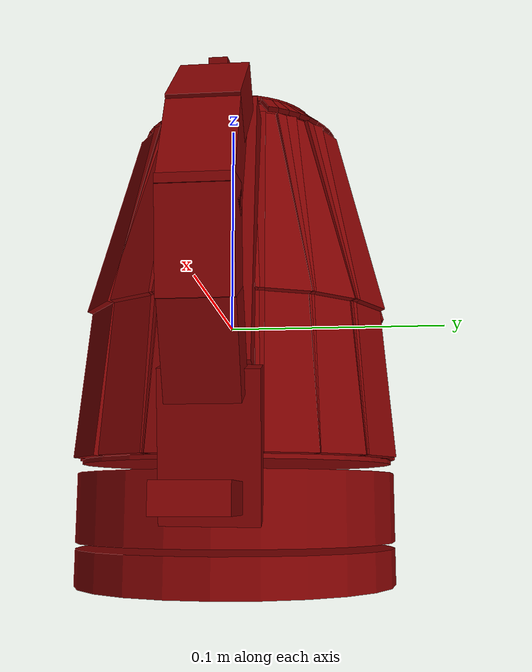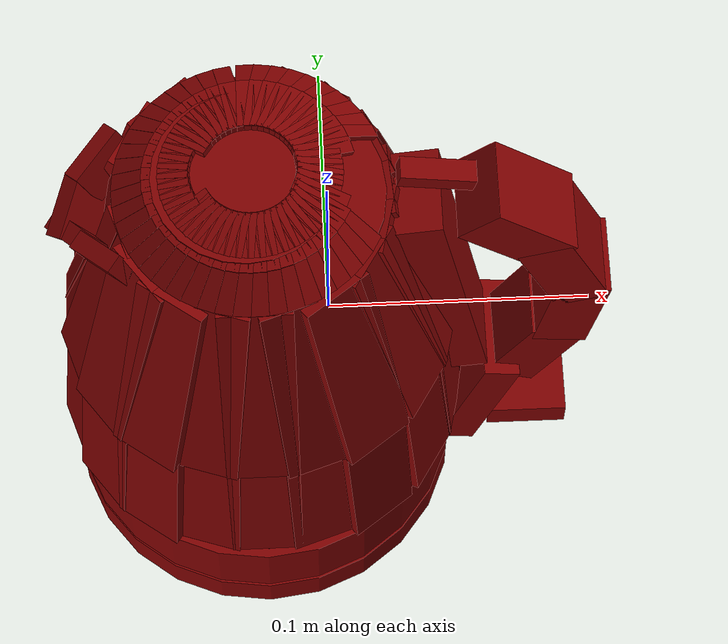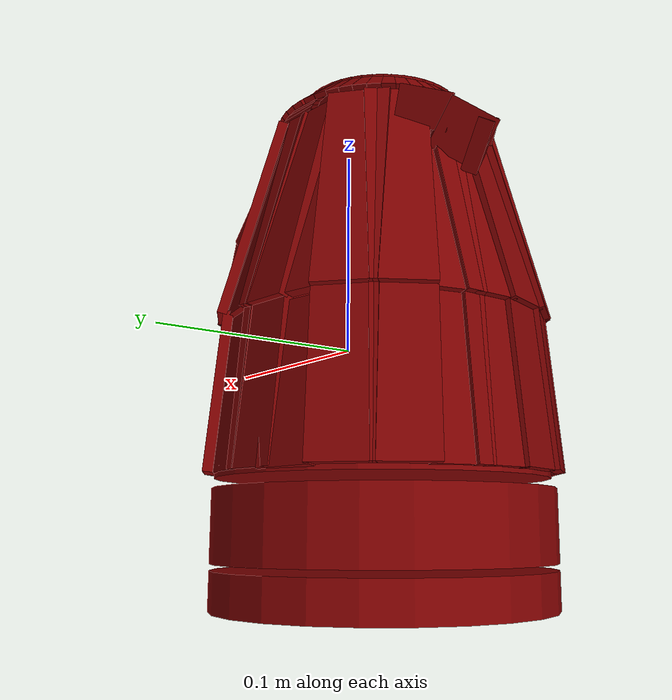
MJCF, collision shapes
<?xml version='1.0' encoding='UTF-8'?>
<mujoco model="model">
  <option timestep="0.002" gravity="0.0 0.0 -9.81"/>
  <compiler angle="radian"/>
  <asset>
    <mesh file="visuals/Body001.obj" name="Body001_vis"/>
    <mesh file="visuals/Button001.obj" name="Button001_vis"/>
    <mesh file="visuals/Button002.obj" name="Button002_vis"/>
    <mesh file="visuals/Handle001.obj" name="Handle001_vis"/>
    <mesh file="visuals/Handle001_Clear.obj" name="Handle001_Clear_vis"/>
    <mesh file="visuals/Lid001.obj" name="Lid001_vis"/>
    <texture file="visuals/T_BC001.png" name="Body001_material" type="2d"/>
    <material name="Body001_material" rgba="1 1 1 1.0" texture="Body001_material" shininess="0.25" specular="2"/>
    <texture file="visuals/T_BC001.png" name="Handle001_material" type="2d"/>
    <material name="Handle001_material" rgba="1 1 1 1.0" texture="Handle001_material" shininess="0.1" specular="0.7"/>
    <texture file="visuals/T_BC001.png" name="Button001_material" type="2d"/>
    <material name="Button001_material" rgba="1 1 1 1.0" texture="Button001_material" shininess="0.1" specular="0.7"/>
    <texture file="visuals/T_BC001.png" name="Button002_material" type="2d"/>
    <material name="Button002_material" rgba="1 1 1 1.0" texture="Button002_material" shininess="0.1" specular="0.7"/>
    <texture file="visuals/T_BC001.png" name="Handle001_Clear_material" type="2d"/>
    <material name="Handle001_Clear_material" rgba="1 1 1 0.25477707386016846" texture="Handle001_Clear_material" shininess="0.1" specular="1.5"/>
    <texture file="visuals/T_BC001.png" name="Lid001_material" type="2d"/>
    <material name="Lid001_material" rgba="1 1 1 1.0" texture="Lid001_material" shininess="0.1" specular="1.5"/>
  </asset>
  <default>
    <default class="visual">
      <geom conaffinity="0" contype="0" group="1" type="mesh"/>
    </default>
    <default class="collision">
      <geom group="0" rgba="0.5 0 0 0.5"/>
    </default>
    <default class="spawn">
      <geom group="0" rgba="1 1 1 0.5" contype="0" conaffinity="0"/>
      <site group="0" rgba="1 1 1 0.5"/>
    </default>
    <default class="region">
      <geom group="1" conaffinity="0" contype="0" rgba="0 1 0 0"/>
    </default>
  </default>
  <worldbody>
    <body>
      <body name="object">
        <geom mesh="Body001_vis" type="mesh" solimp="0.998 0.998 0.001" solref="0.001 1" friction="0.95 0.3 0.1" class="visual" material="Body001_material"/>
        <geom class="collision" type="cylinder" pos="-0.02722155675292015 -0.0010092105949297547 -0.11129803955554962" size="0.0768081322312355 0.008617708459496498" quat="1.0 0.0 0.0 0.0" density="1000.0"/>
        <body name="Handle001">
          <joint axis="0.0 0.0 1.0" pos="3.725290298461914e-09 0.0 0.007803112268447876" limited="true" name="Handle001_joint" range="0.0 0.08" type="slide" damping="1" frictionloss="1" armature=".01" stiffness="0.05"/>
          <geom mesh="Handle001_vis" type="mesh" solimp="0.998 0.998 0.001" solref="0.001 1" friction="0.95 0.3 0.1" class="visual" material="Handle001_material"/>
          <geom class="collision" type="box" pos="0.04201378673315048 1.4690985494780762e-07 0.0354456752538681" size="0.008989891037344933 0.01609395258128643 0.06281956285238266" quat="0.9965038299560547 -3.209718195312374e-17 -0.08354714512825012 2.859695147350294e-09" density="1000.0"/>
          <geom class="collision" type="box" pos="0.05809831619262695 1.436938390497744e-07 -0.058511536568403244" size="0.007249075919389725 0.020444408059120178 0.03145648539066315" quat="0.9909151196479797 -0.008864816278219223 0.13260747492313385 0.020589224994182587" density="1000.0"/>
          <geom class="collision" type="box" pos="0.07869435101747513 1.4495607558728807e-07 -0.021634802222251892" size="0.01047359500080347 0.015055187046527863 0.020427098497748375" quat="0.9771967530250549 7.972967607783039e-16 0.21233582496643066 -7.267942248034842e-09" density="1000.0"/>
          <geom class="collision" type="box" pos="0.09147712588310242 1.4626337474510365e-07 0.016558753326535225" size="0.010473599657416344 0.015055186115205288 0.023168545216321945" quat="0.9974961280822754 -5.825168398045175e-16 0.07072144001722336 -2.420690314863805e-09" density="1000.0"/>
          <geom class="collision" type="box" pos="0.08654046058654785 1.4747382692803512e-07 0.0519225150346756" size="0.010473595932126045 0.015055186115205288 0.023168545216321945" quat="0.9830483794212341 -5.436660854919229e-16 -0.18334630131721497 6.2756755347948e-09" density="1000.0"/>
          <geom class="collision" type="box" pos="0.06790594756603241 1.485413605450958e-07 0.08311080932617188" size="0.01047359686344862 0.015055186115205288 0.020393677055835724" quat="0.9199845790863037 -2.7333045935385315e-15 -0.3919545114040375 1.341603095283972e-08" density="1000.0"/>
          <geom class="collision" type="cylinder" pos="-0.02722155675292015 -0.0010092105949297547 -0.08373555541038513" size="0.07685434073209763 0.016160646453499794" quat="1.0 0.0 0.0 0.0" density="1000.0"/>
          <body name="Button001">
            <joint axis="0.0 0.0 -1.0" pos="0.0756685882806778 -0.0012993308482691646 -0.08046502619981766" limited="true" name="Button001_joint" range="0.0 0.005" type="slide" damping="1" frictionloss="1" armature=".01" stiffness="2" springref="-0.12"/>
            <geom mesh="Button001_vis" type="mesh" solimp="0.998 0.998 0.001" solref="0.001 1" friction="0.95 0.3 0.1" class="visual" material="Button001_material"/>
            <geom class="collision" type="box" pos="0.0794016495347023 -0.0016174050979316235 -0.07966085523366928" size="0.015766000375151634 0.015154006890952587 0.006412597373127937" quat="1.0 0.0 0.0 0.0" density="1000.0"/>
          </body>
          <body name="Button002">
            <joint axis="0.0 1.0 0.0" pos="0.03885579854249954 -0.00021310761803761125 0.11073160171508789" limited="true" name="Button002_joint" range="0.0 0.2617993877991494" type="hinge" damping="1" frictionloss="1" armature=".01" stiffness="0.05"/>
            <geom mesh="Button002_vis" type="mesh" solimp="0.998 0.998 0.001" solref="0.001 1" friction="0.95 0.3 0.1" class="visual" material="Button002_material"/>
            <geom class="collision" type="box" pos="0.0385051965713501 1.4951478988223244e-07 0.11154983937740326" size="0.0033648379612714052 0.0042495932430028915 0.013864615000784397" quat="0.7748663425445557 2.846093044399367e-14 -0.6321250796318054 2.1636745728415008e-08" density="1000.0"/>
          </body>
          <body name="Handle001_Clear">
            <geom mesh="Handle001_Clear_vis" type="mesh" solimp="0.998 0.998 0.001" solref="0.001 1" friction="0.95 0.3 0.1" class="visual" material="Handle001_Clear_material"/>
            <geom class="collision" type="box" pos="-0.08053702116012573 0.019328923895955086 0.09065964818000793" size="0.0036202354822307825 0.011546943336725235 0.00821163970977068" quat="0.9015769362449646 0.02373584546148777 -0.2408757507801056 -0.35857293009757996" density="1000.0"/>
            <geom class="collision" type="box" pos="-0.08790590614080429 0.004140382166951895 0.08134017884731293" size="0.0036202368792146444 0.011546945199370384 0.011602171696722507" quat="0.9193747639656067 0.12453010678291321 -0.3004531264305115 -0.22129221260547638" density="1000.0"/>
            <geom class="collision" type="box" pos="-0.08676664531230927 -0.006949464324861765 0.07933914661407471" size="0.003620235715061426 0.011546943336725235 0.01160216610878706" quat="0.8744507431983948 -0.15662609040737152 -0.2659342288970947 0.3742767870426178" density="1000.0"/>
            <geom class="collision" type="box" pos="-0.08016178011894226 -0.018924469128251076 0.09193047881126404" size="0.00362023594789207 0.011546943336725235 0.0060956706292927265" quat="0.8819336295127869 -0.1455392837524414 -0.22300022840499878 0.3889501988887787" density="1000.0"/>
            <geom class="collision" type="cylinder" pos="-0.02668241411447525 -0.00046684127300977707 -0.06114138290286064" size="0.07518697530031204 0.0022807568311691284" quat="1.0 0.0 0.0 0.0" density="1000.0"/>
            <geom class="collision" type="box" pos="-0.09858841449022293 1.3731190051657904e-07 -0.026205215603113174" size="0.0022226141300052404 0.013775870203971863 0.03540914133191109" quat="0.998891294002533 -1.611361183373461e-10 0.04707598313689232 -3.2820599571437015e-09" density="1000.0"/>
            <geom class="collision" type="box" pos="-0.09644709527492523 -0.022902319207787514 -0.026058677583932877" size="0.002222614362835884 0.013775870203971863 0.03540913015604019" quat="0.986053466796875 -0.007523172069340944 0.046470798552036285 0.15963231027126312" density="1000.0"/>
            <geom class="collision" type="box" pos="-0.08724537491798401 -0.04426399618387222 -0.025899987667798996" size="0.0022226134315133095 0.013775866478681564 0.03540912643074989" quat="0.9484701156616211 -0.014767616987228394 0.04469960927963257 0.3133500814437866" density="1000.0"/>
            <geom class="collision" type="box" pos="-0.07098263502120972 -0.06028774753212929 -0.025905480608344078" size="0.0022226145956665277 0.013775873929262161 0.03540914133191109" quat="0.8890649676322937 -0.021459979936480522 0.04190000519156456 0.4553540349006653" density="1000.0"/>
            <geom class="collision" type="box" pos="-0.049595389515161514 -0.0673801600933075 -0.02623271942138672" size="0.0022226141300052404 0.013775864616036415 0.03540913760662079" quat="0.8086549639701843 -0.027635756880044937 0.03811036795377731 0.5863966345787048" density="1000.0"/>
            <geom class="collision" type="box" pos="-0.027211928740143776 -0.07069927453994751 -0.026257049292325974" size="0.002222614362835884 0.013775874860584736 0.035409148782491684" quat="0.7045503854751587 -0.033370960503816605 0.03320411592721939 0.7080908417701721" density="1000.0"/>
            <geom class="collision" type="box" pos="-0.005019556265324354 -0.06754183769226074 -0.026215489953756332" size="0.002222613897174597 0.013775868341326714 0.03540914133191109" quat="0.5838850140571594 -0.038195885717868805 0.02751736342906952 0.8104703426361084" density="1000.0"/>
            <geom class="collision" type="box" pos="0.016206197440624237 -0.059947844594717026 -0.025935323908925056" size="0.0022226134315133095 0.013775868341326714 0.035409115254879" quat="0.4524306654930115 -0.04197021573781967 0.02132219262421131 0.8905562162399292" density="1000.0"/>
            <geom class="collision" type="box" pos="0.035580094903707504 -0.0389801450073719 -0.025942064821720123" size="0.0022226134315133095 0.01377587765455246 0.03540914133191109" quat="0.2727084159851074 -0.04528747871518135 0.012852195650339127 0.9609442949295044" density="1000.0"/>
            <geom class="collision" type="box" pos="0.04464205726981163 -0.017063023522496223 -0.025945289060473442" size="0.0022226141300052404 0.013775866478681564 0.03540914133191109" quat="0.11563549190759659 -0.046759232878685 0.005449659191071987 0.9921755194664001" density="1000.0"/>
            <geom class="collision" type="box" pos="0.04635562002658844 0.0063081360422074795 -0.02594597637653351" size="0.002222613664343953 0.013775867410004139 0.035409115254879" quat="0.042503487318754196 0.047033220529556274 0.002003107685595751 -0.9979866147041321" density="1000.0"/>
            <geom class="collision" type="box" pos="0.04094963148236275 0.028455261141061783 -0.025944234803318977" size="0.0022226134315133095 0.013775864616036415 0.03540913760662079" quat="0.19533079862594604 0.046167001128196716 0.009205561131238937 -0.9796069264411926" density="1000.0"/>
            <geom class="collision" type="box" pos="0.027694376185536385 0.04950957000255585 -0.025939783081412315" size="0.002222613897174597 0.013775869272649288 0.03540912643074989" quat="0.35681435465812683 0.04396996647119522 0.016815969720482826 -0.9329884052276611" density="1000.0"/>
            <geom class="collision" type="box" pos="0.009256304241716862 0.06442540138959885 -0.025933532044291496" size="0.002222614362835884 0.013775872066617012 0.03540914133191109" quat="0.5013288259506226 0.040717508643865585 0.02362668141722679 -0.8639752864837646" density="1000.0"/>
            <geom class="collision" type="box" pos="-0.013633760623633862 0.06800924241542816 -0.026379419490695" size="0.0022226145956665277 0.013775871135294437 0.03540913760662079" quat="0.631479799747467 0.036475371569395065 0.029760418459773064 -0.7739619612693787" density="1000.0"/>
            <geom class="collision" type="box" pos="-0.03498903661966324 0.06947451084852219 -0.02633088454604149" size="0.0022226148284971714 0.013775872997939587 0.03540912643074989" quat="0.7428945899009705 0.03146980702877045 0.035011183470487595 -0.6677510738372803" density="1000.0"/>
            <geom class="collision" type="box" pos="-0.053485650569200516 0.06529625505208969 -0.028121767565608025" size="0.002135859103873372 0.013775868341326714 0.03422689810395241" quat="0.7865890860557556 0.031835369765758514 0.05434313416481018 -0.6142564415931702" density="1000.0"/>
            <geom class="collision" type="box" pos="-0.07534916698932648 0.056860197335481644 -0.025904512032866478" size="0.0022226127330213785 0.013775870203971863 0.03540912643074989" quat="0.9054586887359619 0.019879378378391266 0.042672593146562576 -0.4218156337738037" density="1000.0"/>
            <geom class="collision" type="box" pos="-0.09071271866559982 0.03912953659892082 -0.02589917555451393" size="0.002222615061327815 0.013775872997939587 0.03540915250778198" quat="0.9607110619544983 0.012890903279185295 0.04527648910880089 -0.2735289931297302" density="1000.0"/>
            <geom class="collision" type="box" pos="-0.0957435891032219 0.017136327922344208 -0.026273954659700394" size="0.002222614362835884 0.013775872066617012 0.03540913015604019" quat="0.9913296103477478 0.005781510844826698 0.04671946540474892 -0.12267636507749557" density="1000.0"/>
            <geom class="collision" type="box" pos="-0.08553577214479446 1.3731940384786867e-07 0.0536063089966774" size="0.002222613664343953 0.013775870203971863 0.047751136124134064" quat="0.9910548329353333 1.23869151047451e-10 0.13345548510551453 -3.2836775520905803e-09" density="1000.0"/>
            <geom class="collision" type="box" pos="-0.08401688188314438 -0.018769344314932823 0.05398216098546982" size="0.0022226141300052404 0.013775872066617012 0.047751136124134064" quat="0.9783176779747009 -0.021327437832951546 0.13174015283584595 0.1583799421787262" density="1000.0"/>
            <geom class="collision" type="box" pos="-0.07668396085500717 -0.03643055260181427 0.05437836796045303" size="0.002222613897174597 0.013775867410004139 0.04775111749768257" quat="0.9410291910171509 -0.04186467453837395 0.1267189234495163 0.3108917474746704" density="1000.0"/>
            <geom class="collision" type="box" pos="-0.06330104917287827 -0.049621108919382095 0.054305437952280045" size="0.0022226148284971714 0.013775874860584736 0.047751136124134064" quat="0.8820900917053223 -0.06083688512444496 0.11878222972154617 0.4517817199230194" density="1000.0"/>
            <geom class="collision" type="box" pos="-0.045545294880867004 -0.05499214679002762 0.05332440137863159" size="0.002222614362835884 0.013775864616036415 0.04775113984942436" quat="0.8023109436035156 -0.07834463566541672 0.10803911834955215 0.5817962288856506" density="1000.0"/>
            <geom class="collision" type="box" pos="-0.027277203276753426 -0.05767712742090225 0.05319565162062645" size="0.0022226148284971714 0.013775871135294437 0.04775114730000496" quat="0.6990230083465576 -0.09460338950157166 0.09413038194179535 0.7025357484817505" density="1000.0"/>
            <geom class="collision" type="box" pos="-0.009146585129201412 -0.055178772658109665 0.05326163023710251" size="0.0022226141300052404 0.013775868341326714 0.04775112867355347" quat="0.5793043375015259 -0.10828161984682083 0.07800904661417007 0.8041120171546936" density="1000.0"/>
            <geom class="collision" type="box" pos="0.008466321043670177 -0.04934779927134514 0.054013337939977646" size="0.0022226134315133095 0.013775869272649288 0.04775112867355347" quat="0.44888126850128174 -0.11898138374090195 0.060446299612522125 0.883569598197937" density="1000.0"/>
            <geom class="collision" type="box" pos="0.024414245039224625 -0.03208746388554573 0.05397242307662964" size="0.002222613664343953 0.01377587579190731 0.047751136124134064" quat="0.27056893706321716 -0.1283854991197586 0.03643476217985153 0.9534055590629578" density="1000.0"/>
            <geom class="collision" type="box" pos="0.03187251836061478 -0.01404552347958088 0.053967200219631195" size="0.002222614362835884 0.01377586554735899 0.047751136124134064" quat="0.11472830921411514 -0.13255798816680908 0.015449282713234425 0.9843917489051819" density="1000.0"/>
            <geom class="collision" type="box" pos="0.03328080102801323 0.00519242137670517 0.05398837849497795" size="0.002222613897174597 0.01377586554735899 0.047751110047101974" quat="0.04217004030942917 0.13333450257778168 0.0056786127388477325 -0.9901572465896606" density="1000.0"/>
            <geom class="collision" type="box" pos="0.028828492388129234 0.023421281948685646 0.05403202027082443" size="0.002222613664343953 0.013775870203971863 0.04775115102529526" quat="0.19379839301109314 0.13087886571884155 0.02609686367213726 -0.9719217419624329" density="1000.0"/>
            <geom class="collision" type="box" pos="0.01791571080684662 0.040748629719018936 0.05410079285502434" size="0.002222613897174597 0.013775869272649288 0.04775112867355347" quat="0.3540150821208954 0.1246504932641983 0.04767162352800369 -0.9256689548492432" density="1000.0"/>
            <geom class="collision" type="box" pos="0.0027387640438973904 0.05302223935723305 0.05417989566922188" size="0.0022226134315133095 0.013775872066617012 0.04775113984942436" quat="0.4973958134651184 0.11543010175228119 0.06697928160429001 -0.8571972250938416" density="1000.0"/>
            <geom class="collision" type="box" pos="-0.016240686178207397 0.055284060537815094 0.05298786610364914" size="0.0022226141300052404 0.013775868341326714 0.04775113984942436" quat="0.6265257596969604 0.10340403020381927 0.08436787873506546 -0.7678900957107544" density="1000.0"/>
            <geom class="collision" type="box" pos="-0.03360709920525551 0.05653991177678108 0.053180158138275146" size="0.002222614362835884 0.013775870203971863 0.04775111749768257" quat="0.7370664477348328 0.08921383321285248 0.09925327450037003 -0.6625124216079712" density="1000.0"/>
            <geom class="collision" type="box" pos="-0.048625364899635315 0.05133552476763725 0.05078981816768646" size="0.0021358588710427284 0.013775864616036415 0.044902559369802475" quat="0.7789214253425598 0.08494257926940918 0.12229876965284348 -0.6091873049736023" density="1000.0"/>
            <geom class="collision" type="box" pos="-0.06688713282346725 0.04679064825177193 0.05445494502782822" size="0.0022226120345294476 0.013775870203971863 0.047751110047101974" quat="0.8983551859855652 0.0563560426235199 0.12097248435020447 -0.4185064136981964" density="1000.0"/>
            <geom class="collision" type="box" pos="-0.07953023910522461 0.03220018744468689 0.05448601767420769" size="0.0022226148284971714 0.013775872066617012 0.047751158475875854" quat="0.9531741142272949 0.036544427275657654 0.12835434079170227 -0.2713831067085266" density="1000.0"/>
            <geom class="collision" type="box" pos="-0.08310592174530029 0.013959878124296665 0.05342869833111763" size="0.0022226145956665277 0.013775870203971863 0.047751136124134064" quat="0.9835524559020996 0.01638999581336975 0.1324450522661209 -0.12171395868062973" density="1000.0"/>
          </body>
          <body name="Lid001">
            <joint axis="0.0 1.0 0.0" pos="0.016730427742004395 -2.2817766875959933e-05 0.11013001203536987" limited="true" name="Lid001_joint" range="0.0 1.5707963267948966" type="hinge" damping="1" frictionloss="1" armature=".01" stiffness="0.05"/>
            <geom mesh="Lid001_vis" type="mesh" solimp="0.998 0.998 0.001" solref="0.001 1" friction="0.95 0.3 0.1" class="visual" material="Lid001_material"/>
            <geom class="collision" type="cylinder" pos="-0.023895051330327988 -0.0004728317726403475 0.0931534543633461" size="0.045052483677864075 0.008690756745636463" quat="1.0 0.0 0.0 0.0" density="1000.0"/>
            <geom class="collision" type="cylinder" pos="-0.028747227042913437 -0.000715753878466785 0.10820936411619186" size="0.0336897186934948 0.008061508648097515" quat="1.0 0.0 0.0 0.0" density="1000.0"/>
            <geom class="collision" type="box" pos="-0.0278943944722414 0.02733789011836052 0.11639609187841415" size="0.0032247118651866913 0.010684615932404995 0.001189921866171062" quat="0.9931198954582214 -0.11710187047719955 -2.6001840220453188e-17 -2.5020025229578004e-24" density="1000.0"/>
            <geom class="collision" type="box" pos="-0.027894385159015656 0.04248424246907234 0.10886827111244202" size="0.0032247118651866913 0.008712706156075 0.0011899240780621767" quat="0.9424005150794983 -0.33448654413223267 -7.427094577947045e-17 -1.3985008958153145e-24" density="1000.0"/>
            <geom class="collision" type="box" pos="-0.02438637800514698 0.02721528150141239 0.11639609187841415" size="0.0032247118651866913 0.010684615932404995 0.001189921866171062" quat="0.9910213351249695 -0.11685439944267273 0.00760869774967432 -0.06452800333499908" density="1000.0"/>
            <geom class="collision" type="box" pos="-0.02242225781083107 0.042233746498823166 0.10886827111244202" size="0.0032247118651866913 0.008712706156075 0.0011899240780621767" quat="0.9404091238975525 -0.33377978205680847 0.02173328399658203 -0.06123252585530281" density="1000.0"/>
            <geom class="collision" type="box" pos="-0.020923880860209465 0.026638798415660858 0.11639609187841415" size="0.0032247118651866913 0.010684615932404995 0.001189921866171062" quat="0.9847344756126404 -0.1161131039261818 0.015185235999524593 -0.12878328561782837" density="1000.0"/>
            <geom class="collision" type="box" pos="-0.017028817906975746 0.041275762021541595 0.10886827856302261" size="0.0032247118651866913 0.008712706156075 0.0011899240780621767" quat="0.9344433546066284 -0.33166229724884033 0.04337470978498459 -0.12220625579357147" density="1000.0"/>
            <geom class="collision" type="box" pos="-0.017565377056598663 0.025618188083171844 0.11639609187841415" size="0.0032247118651866913 0.010684615932404995 0.001189921866171062" quat="0.9742859601974487 -0.11488106101751328 0.022697603330016136 -0.19249434769153595" density="1000.0"/>
            <geom class="collision" type="box" pos="-0.011805142275989056 0.03962646424770355 0.10886827856302261" size="0.0032247118651866913 0.008712706156075 0.0011899240780621767" quat="0.9245284199714661 -0.3281431198120117 0.06483280658721924 -0.18266351521015167" density="1000.0"/>
            <geom class="collision" type="box" pos="-0.014367574825882912 0.02417067624628544 0.11639609187841415" size="0.003224712098017335 0.010684615932404995 0.001189921866171062" quat="0.9597198367118835 -0.1131635308265686 0.03011403977870941 -0.25539183616638184" density="1000.0"/>
            <geom class="collision" type="box" pos="-0.006839449517428875 0.03731372207403183 0.10886827856302261" size="0.0032247118651866913 0.008712706156075 0.0011899240780621767" quat="0.9107062220573425 -0.32323721051216125 0.086016945540905 -0.2423488348722458" density="1000.0"/>
            <geom class="collision" type="box" pos="-0.01138448528945446 0.022320711985230446 0.11639609187841415" size="0.0032247118651866913 0.010684615932404995 0.001189921866171062" quat="0.9410977363586426 -0.11096774786710739 0.03740321844816208 -0.31721004843711853" density="1000.0"/>
            <geom class="collision" type="box" pos="-0.0022155949845910072 0.034376565366983414 0.10886827856302261" size="0.0032247118651866913 0.008712706156075 0.0011899240780621767" quat="0.8930352330207825 -0.3169651925563812 0.10683749616146088 -0.30100980401039124" density="1000.0"/>
            <geom class="collision" type="box" pos="-0.008666474372148514 0.02009953185915947 0.11639609187841415" size="0.0032247118651866913 0.010684615932404995 0.001189921866171062" quat="0.9184983968734741 -0.10830295085906982 0.044534292072057724 -0.3776875436306" density="1000.0"/>
            <geom class="collision" type="box" pos="0.001988343195989728 0.030864611268043518 0.10886827856302261" size="0.0032247118651866913 0.008712706156075 0.0011899240780621767" quat="0.8715900182723999 -0.30935364961624146 0.12720656394958496 -0.35839876532554626" density="1000.0"/>
            <geom class="collision" type="box" pos="-0.00625944510102272 0.01754465140402317 0.11639609187841415" size="0.003224712098017335 0.010684615932404995 0.001189921866171062" quat="0.8920172452926636 -0.10518048703670502 0.05147717893123627 -0.4365689158439636" density="1000.0"/>
            <geom class="collision" type="box" pos="0.005701375659555197 0.026837166398763657 0.10886827856302261" size="0.0032247118651866913 0.008712706156075 0.0011899240780621767" quat="0.846461296081543 -0.3004347085952759 0.14703801274299622 -0.4142729938030243" density="1000.0"/>
            <geom class="collision" type="box" pos="-0.004204047843813896 0.01469920389354229 0.11639609187841415" size="0.003224712098017335 0.010684615932404995 0.001189921866171062" quat="0.8617662191390991 -0.10161349922418594 0.05820252001285553 -0.49360525608062744" density="1000.0"/>
            <geom class="collision" type="box" pos="0.008860793896019459 0.022362234070897102 0.10886827856302261" size="0.003224712098017335 0.008712706156075 0.0011899240780621767" quat="0.8177551627159119 -0.29024603962898254 0.16624808311462402 -0.46839648485183716" density="1000.0"/>
            <geom class="collision" type="box" pos="-0.0025349892675876617 0.011611251160502434 0.11639609187841415" size="0.0032247118651866913 0.010684615932404995 0.001189921866171062" quat="0.827873170375824 -0.09761706739664078 0.06468186527490616 -0.5485555529594421" density="1000.0"/>
            <geom class="collision" type="box" pos="0.010921488516032696 0.018677134066820145 0.10886827856302261" size="0.002604342997074127 0.008712706156075 0.0011899240780621767" quat="0.7855930924415588 -0.27883073687553406 0.18475553393363953 -0.5205404162406921" density="1000.0"/>
            <geom class="collision" type="box" pos="-0.0012804530560970306 0.008332934230566025 0.11639609187841415" size="0.003224712098017335 0.010684615932404995 0.001189921866171062" quat="0.7904813885688782 -0.09320807456970215 0.07088785618543625 -0.6011874675750732" density="1000.0"/>
            <geom class="collision" type="box" pos="-0.0030304440297186375 0.004556729458272457 0.11701653152704239" size="0.0032247118651866913 0.00831636879593134 0.001189921866171062" quat="0.7497488260269165 -0.08840517699718475 0.07679425925016403 -0.6512786746025085" density="1000.0"/>
            <geom class="collision" type="box" pos="-0.0026172264479100704 0.0014029385056346655 0.11699995398521423" size="0.0032247123308479786 0.008316367864608765 0.001189921866171062" quat="0.7058475613594055 -0.08322866261005402 0.0823761373758316 -0.6986174583435059" density="1000.0"/>
            <geom class="collision" type="box" pos="-0.002707658801227808 -0.0017758863978087902 0.11700522154569626" size="0.0032247116323560476 0.00831636879593134 0.001189921866171062" quat="0.6589633226394653 -0.07770039141178131 0.08760984241962433 -0.7430036664009094" density="1000.0"/>
            <geom class="collision" type="box" pos="-0.003297165036201477 -0.004890840034931898 0.1170322522521019" size="0.003224712098017335 0.00831636879593134 0.0011899216333404183" quat="0.6092942357063293 -0.07184375077486038 0.09247330576181412 -0.7842497825622559" density="1000.0"/>
            <geom class="collision" type="box" pos="-0.0026356843300163746 -0.008545946329832077 0.11663559079170227" size="0.0032247118651866913 0.010256156325340271 0.0011899217497557402" quat="0.5570499897003174 -0.06568346917629242 0.09694594144821167 -0.8221815228462219" density="1000.0"/>
            <geom class="collision" type="box" pos="-0.003120124340057373 -0.012129779905080795 0.11639609932899475" size="0.0032247118651866913 0.010684615932404995 0.001189921866171062" quat="0.5024516582489014 -0.05924560874700546 0.10100886225700378 -0.856638491153717" density="1000.0"/>
            <geom class="collision" type="box" pos="0.010099722072482109 -0.019522186368703842 0.10886827856302261" size="0.0032247118651866913 0.008712706156075 0.0011899240780621767" quat="0.4767910838127136 -0.16922757029533386 0.288519024848938 -0.8128893375396729" density="1000.0"/>
            <geom class="collision" type="box" pos="-0.004939276725053787 -0.015131758525967598 0.11639609187841415" size="0.0032247118651866913 0.010684615932404995 0.001189921866171062" quat="0.4457298219203949 -0.05255737155675888 0.10464490205049515 -0.8874751329421997" density="1000.0"/>
            <geom class="collision" type="box" pos="0.007210334297269583 -0.024176038801670074 0.10886827856302261" size="0.0032247118651866913 0.008712706156075 0.0011899240780621767" quat="0.4229660928249359 -0.1501234620809555 0.2989048957824707 -0.8421511054039001" density="1000.0"/>
            <geom class="collision" type="box" pos="-0.007132355123758316 -0.017872489988803864 0.11639609932899475" size="0.0032247118651866913 0.010684615932404995 0.001189921866171062" quat="0.38712427020072937 -0.04564700648188591 0.1078386977314949 -0.9145610928535461" density="1000.0"/>
            <geom class="collision" type="box" pos="0.003741854103282094 -0.02841591089963913 0.10886827856302261" size="0.0032247118651866913 0.008712706156075 0.0011899240780621767" quat="0.36735355854034424 -0.1303848773241043 0.30802756547927856 -0.8678537607192993" density="1000.0"/>
            <geom class="collision" type="box" pos="-0.009662322700023651 -0.0203056950122118 0.11639609187841415" size="0.0032247118651866913 0.010684615932404995 0.001189921866171062" quat="0.32688239216804504 -0.038543712347745895 0.11057676374912262 -0.9377819895744324" density="1000.0"/>
            <geom class="collision" type="box" pos="-0.0002471571206115186 -0.03217021003365517 0.10886827856302261" size="0.0032247118651866913 0.008712706156075 0.0011899240780621767" quat="0.3101883828639984 -0.11009524017572403 0.3158484399318695 -0.8898887634277344" density="1000.0"/>
            <geom class="collision" type="box" pos="-0.012486450374126434 -0.022390281781554222 0.11639609187841415" size="0.0032247118651866913 0.010684615932404995 0.001189921866171062" quat="0.26525941491127014 -0.03127755597233772 0.11284749954938889 -0.957039475440979" density="1000.0"/>
            <geom class="collision" type="box" pos="-0.004689314402639866 -0.03537553548812866 0.10886827856302261" size="0.0032247118651866913 0.008712706156075 0.0011899240780621767" quat="0.2517124116420746 -0.08934035152196884 0.3223344087600708 -0.9081628322601318" density="1000.0"/>
            <geom class="collision" type="box" pos="-0.015557056292891502 -0.024091042578220367 0.11639609187841415" size="0.0032247118651866913 0.01068461500108242 0.001189921866171062" quat="0.20251524448394775 -0.023879192769527435 0.11464126408100128 -0.9722524285316467" density="1000.0"/>
            <geom class="collision" type="box" pos="-0.009509623982012272 -0.03797775134444237 0.10886827856302261" size="0.0032247118651866913 0.008712706156075 0.0011899240780621767" quat="0.19217264652252197 -0.06820788234472275 0.3274582028388977 -0.9225987792015076" density="1000.0"/>
            <geom class="collision" type="box" pos="-0.018822278827428818 -0.025379261001944542 0.11639609187841415" size="0.0032247118651866913 0.010684615932404995 0.001189921866171062" quat="0.13891521096229553 -0.01637992262840271 0.11595059931278229 -0.9833563566207886" density="1000.0"/>
            <geom class="collision" type="box" pos="-0.014626674354076385 -0.03993292152881622 0.10886827856302261" size="0.0032247118651866913 0.008712706156075 0.0011899240780621767" quat="0.1318207085132599 -0.04678715765476227 0.3311980664730072 -0.9331356287002563" density="1000.0"/>
            <geom class="collision" type="box" pos="-0.022226981818675995 -0.026233186945319176 0.11639609187841415" size="0.0032247118651866913 0.010684615932404995 0.001189921866171062" quat="0.0747280940413475 -0.008811420761048794 0.11676986515522003 -0.9903044104576111" density="1000.0"/>
            <geom class="collision" type="box" pos="-0.019954055547714233 -0.04120802879333496 0.10886827856302261" size="0.0032247118651866913 0.008712706156075 0.0011899240780621767" quat="0.07091167569160461 -0.025168700143694878 0.3335382044315338 -0.939728856086731" density="1000.0"/>
            <geom class="collision" type="box" pos="-0.02571367286145687 -0.026638394221663475 0.11639609187841415" size="0.003224712098017335 0.010684615932404995 0.001189921866171062" quat="0.010225162841379642 -0.0012056805426254869 0.11709564179182053 -0.9930672645568848" density="1000.0"/>
            <geom class="collision" type="box" pos="-0.025401804596185684 -0.041781529784202576 0.10886827856302261" size="0.003224712098017335 0.008712706156075 0.0011899240780621767" quat="0.00970295537263155 -0.0034438734874129295 0.334468811750412 -0.9423505663871765" density="1000.0"/>
            <geom class="collision" type="box" pos="-0.029223473742604256 -0.026588041335344315 0.11639609187841415" size="0.0032247118651866913 0.010684615932404995 0.001189921866171062" quat="0.05432113632559776 -0.006405173800885677 -0.11692654341459274 0.9916331768035889" density="1000.0"/>
            <geom class="collision" type="box" pos="-0.030877936631441116 -0.041643768548965454 0.10886827856302261" size="0.0032247118651866913 0.008712706156075 0.0011899240780621767" quat="0.051546912640333176 -0.018295560032129288 -0.33398574590682983 0.9409897327423096" density="1000.0"/>
            <geom class="collision" type="box" pos="-0.03269711136817932 -0.026082981377840042 0.11639609187841415" size="0.003224712098017335 0.01068461500108242 0.001189921866171062" quat="0.1186378225684166 -0.01398895587772131 -0.11626330018043518 0.9860082268714905" density="1000.0"/>
            <geom class="collision" type="box" pos="-0.036289963871240616 -0.04079703614115715 0.10886827856302261" size="0.003224712098017335 0.008712706156075 0.0011899240780621767" quat="0.11257890611886978 -0.03995766118168831 -0.33209121227264404 0.9356520771980286" density="1000.0"/>
            <geom class="collision" type="box" pos="-0.03607592359185219 -0.02513173408806324 0.11639609187841415" size="0.0032247118651866913 0.01068461500108242 0.001189921866171062" quat="0.18245312571525574 -0.02151361107826233 -0.11510864645242691 0.976216197013855" density="1000.0"/>
            <geom class="collision" type="box" pos="-0.04154649376869202 -0.03925564885139465 0.10886827856302261" size="0.0032247118651866913 0.008712706156075 0.0011899240780621767" quat="0.17313511669635773 -0.061450883746147156 -0.3287931978702545 0.9263601303100586" density="1000.0"/>
            <geom class="collision" type="box" pos="-0.039302852004766464 -0.023750370368361473 0.11639609187841415" size="0.0032247118651866913 0.010684615932404995 0.001189921866171062" quat="0.2454972267150879 -0.028947338461875916 -0.11346760392189026 0.9622984528541565" density="1000.0"/>
            <geom class="collision" type="box" pos="-0.04655876383185387 -0.03704563155770302 0.10886827856302261" size="0.0032247118651866913 0.008712706156075 0.0011899240780621767" quat="0.23295949399471283 -0.08268437534570694 -0.32410570979118347 0.9131531119346619" density="1000.0"/>
            <geom class="collision" type="box" pos="-0.04232340678572655 -0.02196221984922886 0.11639609187841415" size="0.0032247118651866913 0.010684615932404995 0.001189921866171062" quat="0.3075040280818939 -0.03625873848795891 -0.11134692281484604 0.9443137645721436" density="1000.0"/>
            <geom class="collision" type="box" pos="-0.051242124289274216 -0.034204304218292236 0.10886827856302261" size="0.0032247118651866913 0.008712706156075 0.0011899240780621767" quat="0.2917995750904083 -0.10356848686933517 -0.3180483281612396 0.8960869312286377" density="1000.0"/>
            <geom class="collision" type="box" pos="-0.0450865775346756 -0.019797474145889282 0.11639609932899475" size="0.0032247118651866913 0.010684615932404995 0.001189921866171062" quat="0.3682110011577606 -0.04341689124703407 -0.10875573754310608 0.9223382472991943" density="1000.0"/>
            <geom class="collision" type="box" pos="-0.05551748722791672 -0.030779652297496796 0.10886827856302261" size="0.0032247118651866913 0.008712706156075 0.0011899240780621767" quat="0.34940633177757263 -0.12401485443115234 -0.3106468915939331 0.8752337098121643" density="1000.0"/>
            <geom class="collision" type="box" pos="-0.04754570126533508 -0.017292693257331848 0.11639609187841415" size="0.0032247118651866913 0.010684615932404995 0.001189921866171062" quat="0.42736196517944336 -0.05039156228303909 -0.1057048887014389 0.8964646458625793" density="1000.0"/>
            <geom class="collision" type="box" pos="-0.05931265652179718 -0.026829516515135765 0.10886827856302261" size="0.0032247118651866913 0.008712706156075 0.0011899240780621767" quat="0.4055362939834595 -0.14393708109855652 -0.30193260312080383 0.8506816029548645" density="1000.0"/>
            <geom class="collision" type="box" pos="-0.049659255892038345 -0.014490161091089249 0.11639609187841415" size="0.0032247118651866913 0.010684615932404995 0.001189921866171062" quat="0.48470690846443176 -0.05715327709913254 -0.10220732539892197 0.8668023943901062" density="1000.0"/>
            <geom class="collision" type="box" pos="-0.06256355345249176 -0.022420568391680717 0.10886827856302261" size="0.0032247118651866913 0.008712706156075 0.0011899240780621767" quat="0.45995256304740906 -0.16325105726718903 -0.2919422388076782 0.8225341439247131" density="1000.0"/>
            <geom class="collision" type="box" pos="-0.05357586219906807 -0.0124153271317482 0.11582373082637787" size="0.0032247118651866913 0.008597251027822495 0.001189921866171062" quat="0.5400031805038452 -0.0636734589934349 -0.09827785193920135 0.8334769010543823" density="1000.0"/>
            <geom class="collision" type="box" pos="-0.06521525979042053 -0.01762728951871395 0.10886827856302261" size="0.0032247118651866913 0.008712706156075 0.0011899240780621767" quat="0.5124249458312988 -0.1818751096725464 -0.280718058347702 0.790910542011261" density="1000.0"/>
            <geom class="collision" type="box" pos="-0.055213287472724915 -0.008934086188673973 0.11577198654413223" size="0.0032247118651866913 0.008597251027822495 0.001189921866171062" quat="0.593017578125 -0.06992451846599579 -0.09393292665481567 0.7966287136077881" density="1000.0"/>
            <geom class="collision" type="box" pos="-0.06722301244735718 -0.012530618347227573 0.10886827856302261" size="0.0032247118651866913 0.008712706156075 0.0011899240780621767" quat="0.5627317428588867 -0.1997305005788803 -0.26830750703811646 0.7559443116188049" density="1000.0"/>
            <geom class="collision" type="box" pos="-0.05631633847951889 -0.005230257287621498 0.11573852598667145" size="0.003224712098017335 0.008597249165177345 0.001189921866171062" quat="0.6435256004333496 -0.07588007301092148 -0.08919107168912888 0.7564138770103455" density="1000.0"/>
            <geom class="collision" type="box" pos="-0.0685528963804245 -0.0072166272439062595 0.10886827856302261" size="0.003224712098017335 0.008712706156075 0.0011899240780621767" quat="0.6106603145599365 -0.21674178540706635 -0.2547629773616791 0.7177832722663879" density="1000.0"/>
            <geom class="collision" type="box" pos="-0.0568527951836586 -0.0013941272627562284 0.11572388559579849" size="0.0032247125636786222 0.008597249165177345 0.001189921866171062" quat="0.6913139224052429 -0.08151493966579437 -0.08407227694988251 0.7130022644996643" density="1000.0"/>
            <geom class="collision" type="box" pos="-0.06918245553970337 -0.0017750487895682454 0.10886827856302261" size="0.0032247118651866913 0.008712706156075 0.0011899240780621767" quat="0.6560080647468567 -0.23283706605434418 -0.24014177918434143 0.6765887141227722" density="1000.0"/>
            <geom class="collision" type="box" pos="-0.056807588785886765 0.0024792244657874107 0.11572834104299545" size="0.0032247118651866913 0.008597251027822495 0.001189921866171062" quat="0.7361805438995361 -0.0868053063750267 -0.07859817147254944 0.6665773391723633" density="1000.0"/>
            <geom class="collision" type="box" pos="-0.06910105794668198 0.0037022207397967577 0.10886827856302261" size="0.0032247118651866913 0.008712706156075 0.0011899240780621767" quat="0.6985833048820496 -0.2479483038187027 -0.2245056927204132 0.6325347423553467" density="1000.0"/>
            <geom class="collision" type="box" pos="-0.05618346855044365 0.006293564569205046 0.11575180292129517" size="0.0032247118651866913 0.00859724823385477 0.0011899217497557402" quat="0.7779359817504883 -0.0917288064956665 -0.07279188185930252 0.6173352599143982" density="1000.0"/>
            <geom class="collision" type="box" pos="-0.06831008195877075 0.009122687391936779 0.10886827856302261" size="0.0032247118651866913 0.008712706156075 0.0011899240780621767" quat="0.7382062077522278 -0.26201167702674866 -0.20792078971862793 0.5858075022697449" density="1000.0"/>
            <geom class="collision" type="box" pos="-0.055000822991132736 0.009955201297998428 0.1157938688993454" size="0.0032247118651866913 0.008597251027822495 0.001189921866171062" quat="0.8164035677909851 -0.09626464545726776 -0.06667796522378922 0.5654841661453247" density="1000.0"/>
            <geom class="collision" type="box" pos="-0.06682287156581879 0.014394814148545265 0.10886827856302261" size="0.0032247118651866913 0.008712706156075 0.0011899240780621767" quat="0.7747092247009277 -0.2749677300453186 -0.19045715034008026 0.5366045236587524" density="1000.0"/>
            <geom class="collision" type="box" pos="-0.05329667404294014 0.013376541435718536 0.11585384607315063" size="0.0032247118651866913 0.008597251027822495 0.0011899219825863838" quat="0.8514208793640137 -0.10039364546537399 -0.060282256454229355 0.5112432241439819" density="1000.0"/>
            <geom class="collision" type="box" pos="-0.0646645575761795 0.01942957192659378 0.10886828601360321" size="0.0032247118651866913 0.008712706156075 0.0011899240780621767" quat="0.8079382181167603 -0.28676167130470276 -0.17218858003616333 0.48513364791870117" density="1000.0"/>
            <geom class="collision" type="box" pos="-0.04953834414482117 0.01534968800842762 0.11639609187841415" size="0.003224712098017335 0.01068461500108242 0.001189921866171062" quat="0.8828397989273071 -0.104098379611969 -0.05363180488348007 0.4548417627811432" density="1000.0"/>
            <geom class="collision" type="box" pos="-0.06187157705426216 0.024141935631632805 0.10886828601360321" size="0.0032247118651866913 0.008712706156075 0.0011899240780621767" quat="0.837752640247345 -0.2973436713218689 -0.15319234132766724 0.4316125512123108" density="1000.0"/>
            <geom class="collision" type="box" pos="-0.047402143478393555 0.01813499629497528 0.11639609932899475" size="0.0032247118651866913 0.010684615932404995 0.001189921866171062" quat="0.910527765750885 -0.10736311227083206 -0.0467546246945858 0.3965177834033966" density="1000.0"/>
            <geom class="collision" type="box" pos="-0.05849109962582588 0.028452331200242043 0.10886828601360321" size="0.0032247118651866913 0.008712706156075 0.0011899240780621767" quat="0.8640264272689819 -0.30666905641555786 -0.13354864716529846 0.37626737356185913" density="1000.0"/>
            <geom class="collision" type="box" pos="-0.04492279887199402 0.020619774237275124 0.11639609187841415" size="0.0032247118651866913 0.010684615932404995 0.001189921866171062" quat="0.9343675374984741 -0.11017413437366486 -0.0396798811852932 0.33651813864707947" density="1000.0"/>
            <geom class="collision" type="box" pos="-0.0545802116394043 0.03228796273469925 0.10886828601360321" size="0.003224712098017335 0.008712706156075 0.0011899240780621767" quat="0.8866487145423889 -0.3146984279155731 -0.1133405789732933 0.31933197379112244" density="1000.0"/>
            <geom class="collision" type="box" pos="-0.04214216768741608 0.022762060165405273 0.11639609932899475" size="0.0032247118651866913 0.010684615932404995 0.001189921866171062" quat="0.9542584419250488 -0.1125195324420929 -0.03243744373321533 0.2750962972640991" density="1000.0"/>
            <geom class="collision" type="box" pos="-0.05020495504140854 0.035584062337875366 0.10886827856302261" size="0.0032247118651866913 0.008712706156075 0.0011899240780621767" quat="0.9055237770080566 -0.3213977515697479 -0.09265343099832535 0.2610468864440918" density="1000.0"/>
            <geom class="collision" type="box" pos="-0.03910721465945244 0.024525677785277367 0.11639609932899475" size="0.0032247118651866913 0.010684615932404995 0.001189921866171062" quat="0.9701164364814758 -0.11438939720392227 -0.025057917460799217 0.21251180768013" density="1000.0"/>
            <geom class="collision" type="box" pos="-0.0454392172396183 0.03828495740890503 0.10886827856302261" size="0.0032247118651866913 0.008712706156075 0.0011899240780621767" quat="0.9205718636512756 -0.32673877477645874 -0.07157476246356964 0.2016586810350418" density="1000.0"/>
            <geom class="collision" type="box" pos="-0.035869188606739044 0.02588084153831005 0.11639609187841415" size="0.003224712098017335 0.010684615932404995 0.001189921866171062" quat="0.9818744659423828 -0.11577583104372025 -0.017572490498423576 0.1490292102098465" density="1000.0"/>
            <geom class="collision" type="box" pos="-0.040363483130931854 0.04034505784511566 0.10886827856302261" size="0.0032247118651866913 0.008712706156075 0.0011899240780621767" quat="0.9317293763160706 -0.33069899678230286 -0.05019361153244972 0.1414182037115097" density="1000.0"/>
            <geom class="collision" type="box" pos="-0.03248276934027672 0.026804670691490173 0.11639609932899475" size="0.003224712098017335 0.01068461500108242 0.001189921866171062" quat="0.9894828200340271 -0.11667296290397644 -0.010012798942625523 0.08491678535938263" density="1000.0"/>
            <geom class="collision" type="box" pos="-0.035063453018665314 0.04172955080866814 0.10886827856302261" size="0.003224712098017335 0.008712706156075 0.0011899240780621767" quat="0.9389492273330688 -0.33326148986816406 -0.028600281104445457 0.08058001101016998" density="1000.0"/>
          </body>
        </body>
        <geom class="region" name="reg_main" type="box" pos="0.0 0.0 0.0" size="0.10557770729064941 0.07804347574710846 0.12092188000679016"/>
      </body>
    </body>
  </worldbody>
  <actuator>
    <motor name="Handle001_joint_actuator" joint="Handle001_joint" gear="100"/>
    <motor name="Button001_joint_actuator" joint="Button001_joint" gear="1"/>
    <motor name="Button002_joint_actuator" joint="Button002_joint" gear="50"/>
    <motor name="Lid001_joint_actuator" joint="Lid001_joint" gear="50"/>
  </actuator>
</mujoco>
